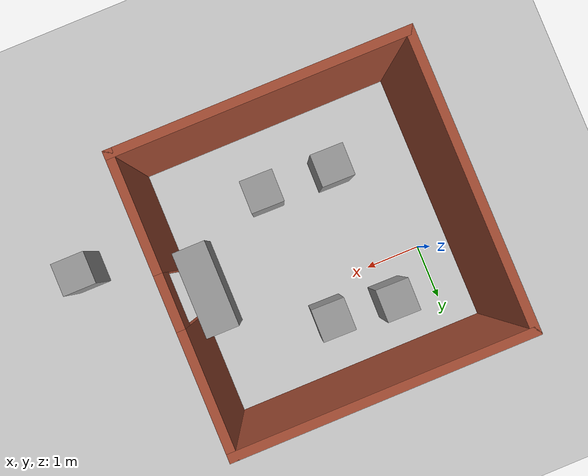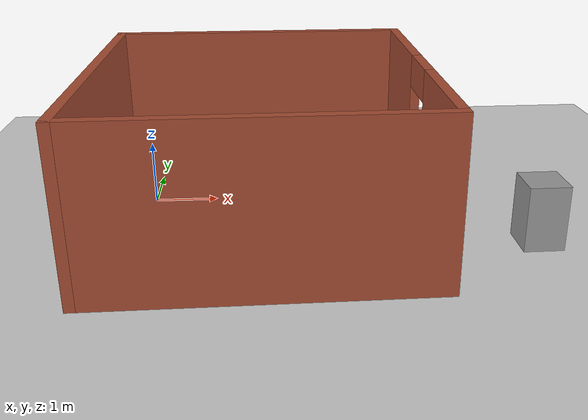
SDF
<sdf version="1.7">
 <world name="default">
  <light name="sun" type="directional">
   <pose>0 0 10 0 -0 0</pose>
   <diffuse>0.8 0.8 0.8 1</diffuse>
   <specular>0.2 0.2 0.2 1</specular>
   <attenuation>
    <range>1000</range>
    <constant>0.9</constant>
    <linear>0.01</linear>
    <quadratic>0.001</quadratic>
   </attenuation>
   <direction>-0.5 0.1 -0.9</direction>
   <spot><inner_angle>0</inner_angle><outer_angle>0</outer_angle><falloff>0</falloff></spot>
  </light>
  <model name="ground_plane">
   <static>1</static>
   <link name="link">
    <collision name="collision">
     <geometry><plane><normal>0 0 1</normal><size>100 100</size></plane></geometry>
     <surface>
      <contact><collide_bitmask>65535</collide_bitmask></contact>
      <friction><ode><mu>100</mu><mu2>50</mu2></ode></friction>
     </surface>
    </collision>
    <visual name="visual">
     <cast_shadows>0</cast_shadows>
     <geometry><plane><normal>0 0 1</normal><size>100 100</size></plane></geometry>
     <material>
      <script><uri>file://media/materials/scripts/gazebo.material</uri><name>Gazebo/Grey</name></script>
     </material>
    </visual>
   </link>
  </model>
  <gravity>0 0 -9.8</gravity>
  <magnetic_field>6e-06 2.3e-05 -4.2e-05</magnetic_field>
  <atmosphere type="adiabatic"/>
  <physics type="ode">
   <max_step_size>0.001</max_step_size>
   <real_time_factor>1</real_time_factor>
   <real_time_update_rate>1000</real_time_update_rate>
  </physics>
  <scene><ambient>0.4 0.4 0.4 1</ambient><background>0.7 0.7 0.7 1</background><shadows>1</shadows></scene>
  <audio><device>default</device></audio>
  <spherical_coordinates>
   <surface_model>EARTH_WGS84</surface_model>
   <latitude_deg>0</latitude_deg>
   <longitude_deg>0</longitude_deg>
   <elevation>0</elevation>
   <heading_deg>0</heading_deg>
  </spherical_coordinates>
  <model name="unit_box">
   <pose>2.0014 0.533826 0.5 0 0 -0.014699</pose>
   <link name="link">
    <inertial>
     <mass>1</mass>
     <inertia>
      <ixx>0.166667</ixx>
      <ixy>0</ixy>
      <ixz>0</ixz>
      <iyy>0.166667</iyy>
      <iyz>0</iyz>
      <izz>0.166667</izz>
     </inertia>
    </inertial>
    <collision name="collision"><geometry><box><size>0.604452 0.597543 1</size></box></geometry></collision>
    <visual name="visual">
     <geometry><box><size>0.604452 0.597543 1</size></box></geometry>
     <material>
      <script><name>Gazebo/Grey</name><uri>file://media/materials/scripts/gazebo.material</uri></script>
     </material>
    </visual>
   </link>
  </model>
  <model name="unit_box_clone">
   <pose>3.8352 -0.783442 0.5 0 0 -1.3e-05</pose>
   <link name="link">
    <inertial>
     <mass>1</mass>
     <inertia>
      <ixx>0.166667</ixx>
      <ixy>0</ixy>
      <ixz>0</ixz>
      <iyy>0.166667</iyy>
      <iyz>0</iyz>
      <izz>0.166667</izz>
     </inertia>
    </inertial>
    <collision name="collision"><geometry><box><size>0.604452 1.58094 1</size></box></geometry></collision>
    <visual name="visual">
     <geometry><box><size>0.604452 1.58094 1</size></box></geometry>
     <material>
      <script><name>Gazebo/Grey</name><uri>file://media/materials/scripts/gazebo.material</uri></script>
     </material>
    </visual>
   </link>
  </model>
  <model name="unit_box_clone_0">
   <pose>5.82527 -1.90128 0.5 0 0 -4e-06</pose>
   <link name="link">
    <inertial>
     <mass>1</mass>
     <inertia>
      <ixx>0.166667</ixx>
      <ixy>0</ixy>
      <ixz>0</ixz>
      <iyy>0.166667</iyy>
      <iyz>0</iyz>
      <izz>0.166667</izz>
     </inertia>
    </inertial>
    <collision name="collision"><geometry><box><size>0.604452 0.597543 1</size></box></geometry></collision>
    <visual name="visual">
     <geometry><box><size>0.604452 0.597543 1</size></box></geometry>
     <material>
      <script><name>Gazebo/Grey</name><uri>file://media/materials/scripts/gazebo.material</uri></script>
     </material>
    </visual>
   </link>
  </model>
  <model name="cafe">
   <pose>1.78743 1.18699 0 0 -0 0</pose>
   <link name="Wall_11">
    <collision name="Wall_11_Collision">
     <geometry><box><size>5 0.15 2.5</size></box></geometry>
     <pose>0 0 1.25 0 -0 0</pose>
    </collision>
    <visual name="Wall_11_Visual">
     <pose>0 0 1.25 0 -0 0</pose>
     <geometry><box><size>5 0.15 2.5</size></box></geometry>
     <material>
      <script><uri>file://media/materials/scripts/gazebo.material</uri><name>Gazebo/Bricks</name></script>
      <ambient>1 1 1 1</ambient>
     </material>
     <meta><layer>0</layer></meta>
    </visual>
    <pose>-0 0.456356 0 0 -0 0</pose>
   </link>
   <link name="Wall_12">
    <pose>2.425 -1.96864 0 0 -0 -1.5708</pose>
    <visual name="Wall_12_Visual_0">
     <pose>-1.45559 0 1.25 0 -0 0</pose>
     <geometry><box><size>2.08882 0.15 2.5</size></box></geometry>
     <material>
      <script><uri>file://media/materials/scripts/gazebo.material</uri><name>Gazebo/Bricks</name></script>
      <ambient>1 1 1 1</ambient>
     </material>
     <meta><layer>0</layer></meta>
    </visual>
    <collision name="Wall_12_Collision_0">
     <geometry><box><size>2.08882 0.15 2.5</size></box></geometry>
     <pose>-1.45559 0 1.25 0 -0 0</pose>
    </collision>
    <visual name="Wall_12_Visual_1">
     <pose>1.49441 0 1.25 0 -0 0</pose>
     <geometry><box><size>2.01118 0.15 2.5</size></box></geometry>
     <material>
      <script><uri>file://media/materials/scripts/gazebo.material</uri><name>Gazebo/Bricks</name></script>
      <ambient>1 1 1 1</ambient>
     </material>
     <meta><layer>0</layer></meta>
    </visual>
    <collision name="Wall_12_Collision_1">
     <geometry><box><size>2.01118 0.15 2.5</size></box></geometry>
     <pose>1.49441 0 1.25 0 -0 0</pose>
    </collision>
    <visual name="Wall_12_Visual_2">
     <pose>0.038817 0 2.25 0 -0 0</pose>
     <geometry><box><size>0.9 0.15 0.5</size></box></geometry>
     <material>
      <script><uri>file://media/materials/scripts/gazebo.material</uri><name>Gazebo/Bricks</name></script>
      <ambient>1 1 1 1</ambient>
     </material>
     <meta><layer>0</layer></meta>
    </visual>
    <collision name="Wall_12_Collision_2">
     <geometry><box><size>0.9 0.15 0.5</size></box></geometry>
     <pose>0.038817 0 2.25 0 -0 0</pose>
    </collision>
   </link>
   <link name="Wall_13">
    <collision name="Wall_13_Collision">
     <geometry><box><size>5 0.15 2.5</size></box></geometry>
     <pose>0 0 1.25 0 -0 0</pose>
    </collision>
    <visual name="Wall_13_Visual">
     <pose>0 0 1.25 0 -0 0</pose>
     <geometry><box><size>5 0.15 2.5</size></box></geometry>
     <material>
      <script><uri>file://media/materials/scripts/gazebo.material</uri><name>Gazebo/Bricks</name></script>
      <ambient>1 1 1 1</ambient>
     </material>
     <meta><layer>0</layer></meta>
    </visual>
    <pose>-0 -4.39364 0 0 -0 3.14159</pose>
   </link>
   <link name="Wall_14">
    <collision name="Wall_14_Collision">
     <geometry><box><size>5 0.15 2.5</size></box></geometry>
     <pose>0 0 1.25 0 -0 0</pose>
    </collision>
    <visual name="Wall_14_Visual">
     <pose>0 0 1.25 0 -0 0</pose>
     <geometry><box><size>5 0.15 2.5</size></box></geometry>
     <material>
      <script><uri>file://media/materials/scripts/gazebo.material</uri><name>Gazebo/Bricks</name></script>
      <ambient>1 1 1 1</ambient>
     </material>
     <meta><layer>0</layer></meta>
    </visual>
    <pose>-2.425 -1.96864 0 0 -0 1.5708</pose>
   </link>
   <static>1</static>
  </model>
  <model name="unit_box_clone_1">
   <pose>1.00167 -1.9315 0.5 0 0 -0.014699</pose>
   <link name="link">
    <inertial>
     <mass>1</mass>
     <inertia>
      <ixx>0.166667</ixx>
      <ixy>0</ixy>
      <ixz>0</ixz>
      <iyy>0.166667</iyy>
      <iyz>0</iyz>
      <izz>0.166667</izz>
     </inertia>
    </inertial>
    <collision name="collision"><geometry><box><size>0.604452 0.597543 1</size></box></geometry></collision>
    <visual name="visual">
     <geometry><box><size>0.604452 0.597543 1</size></box></geometry>
     <material>
      <script><name>Gazebo/Grey</name><uri>file://media/materials/scripts/gazebo.material</uri></script>
     </material>
    </visual>
   </link>
  </model>
  <model name="unit_box_clone_2">
   <pose>2.30051 -1.97561 0.5 0 -0 -0.014699</pose>
   <link name="link">
    <inertial>
     <mass>1</mass>
     <inertia>
      <ixx>0.166667</ixx>
      <ixy>0</ixy>
      <ixz>0</ixz>
      <iyy>0.166667</iyy>
      <iyz>0</iyz>
      <izz>0.166667</izz>
     </inertia>
    </inertial>
    <collision name="collision"><geometry><box><size>0.604452 0.597543 1</size></box></geometry></collision>
    <visual name="visual">
     <geometry><box><size>0.604452 0.597543 1</size></box></geometry>
     <material>
      <script><name>Gazebo/Grey</name><uri>file://media/materials/scripts/gazebo.material</uri></script>
     </material>
    </visual>
   </link>
  </model>
  <model name="unit_box_clone_3">
   <pose>0.852511 0.643344 0.5 0 -0 -0.014699</pose>
   <link name="link">
    <inertial>
     <mass>1</mass>
     <inertia>
      <ixx>0.166667</ixx>
      <ixy>0</ixy>
      <ixz>0</ixz>
      <iyy>0.166667</iyy>
      <iyz>0</iyz>
      <izz>0.166667</izz>
     </inertia>
    </inertial>
    <collision name="collision"><geometry><box><size>0.604452 0.597543 1</size></box></geometry></collision>
    <visual name="visual">
     <geometry><box><size>0.604452 0.597543 1</size></box></geometry>
     <material>
      <script><name>Gazebo/Grey</name><uri>file://media/materials/scripts/gazebo.material</uri></script>
     </material>
    </visual>
   </link>
  </model>
 </world>
</sdf>
